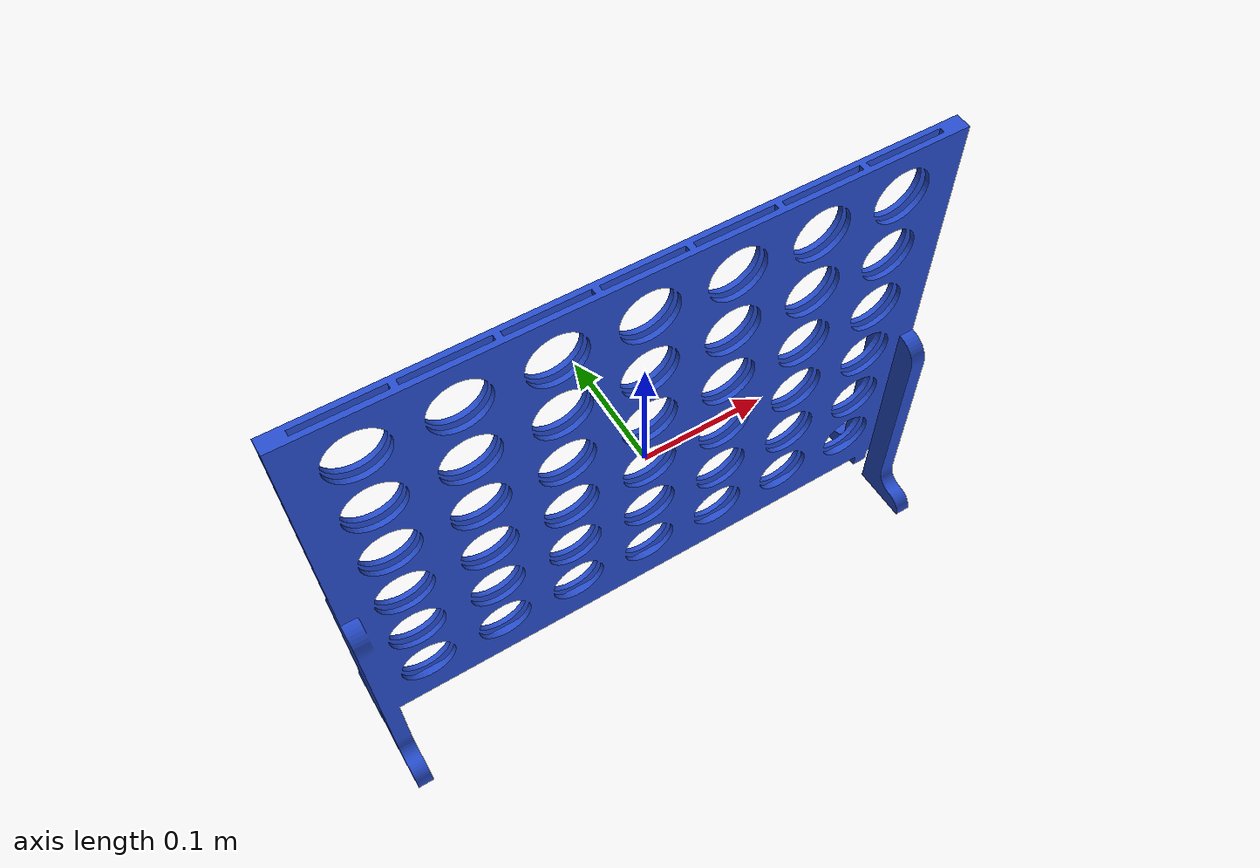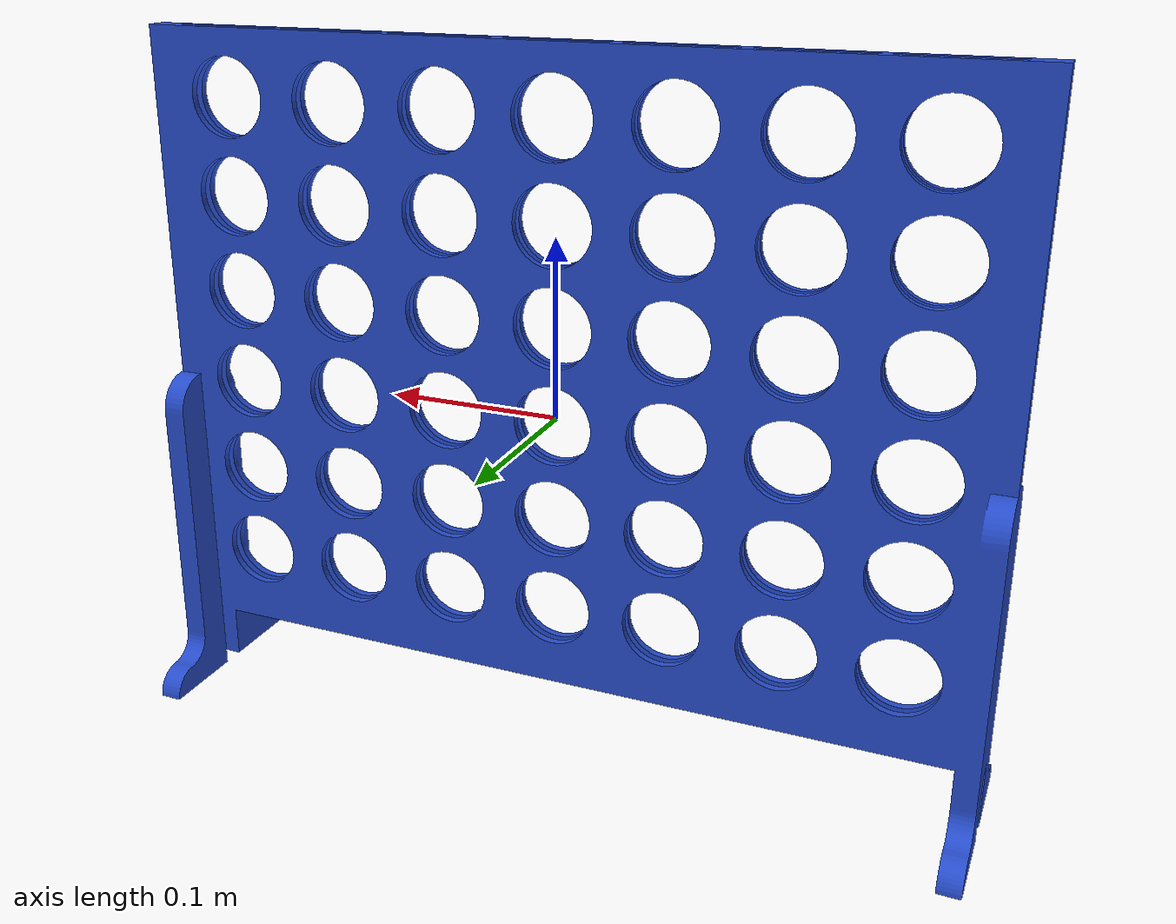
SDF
<?xml version="1.0" ?>
<sdf version="1.5">
  <model name="Grid">
    <static>true</static>
    <link name="link">

      <collision name="Base">
        <pose>0 0 -0.17 0 0 0</pose>
        <geometry>
          <box>
            <size>0.485 0.0129 0.065</size>
          </box>
        </geometry>
      </collision>

      <collision name="Front">
        <pose>0 -0.0043 0.03 0 0 0</pose>
        <geometry>
          <box>
            <size>0.485 0.0043 0.34</size>
          </box>
        </geometry>
      </collision>

      <collision name="Back">
        <pose>0 0.0043 0.03 0 0 0</pose>
        <geometry>
          <box>
            <size>0.485 0.0043 0.34</size>
          </box>
        </geometry>
      </collision>

      <collision name="Left">
        <pose>-0.2375 0 0.03 0 0 0</pose>
        <geometry>
          <box>
            <size>0.0175 0.0043 0.34</size>
          </box>
        </geometry>
      </collision>

      <collision name="Right">
        <pose>0.2375 0 0.03 0 0 0</pose>
        <geometry>
          <box>
            <size>0.0175 0.0043 0.34</size>
          </box>
        </geometry>
      </collision>

      <collision name="InnerCol1">
        <pose>0.1625 0 0.03 0 0 0</pose>
        <geometry>
          <box>
            <size>0.005 0.0043 0.34</size>
          </box>
        </geometry>
      </collision>
      <collision name="InnerCol2">
        <pose>0.0975 0 0.03 0 0 0</pose>
        <geometry>
          <box>
            <size>0.005 0.0043 0.34</size>
          </box>
        </geometry>
      </collision>
      <collision name="InnerCol3">
        <pose>0.0325 0 0.03 0 0 0</pose>
        <geometry>
          <box>
            <size>0.005 0.0043 0.34</size>
          </box>
        </geometry>
      </collision>
     <collision name="InnerCol4">
        <pose>-0.0325 0 0.03 0 0 0</pose>
        <geometry>
          <box>
            <size>0.005 0.0043 0.34</size>
          </box>
        </geometry>
      </collision>
      <collision name="InnerCol5">
        <pose>-0.0975 0 0.03 0 0 0</pose>
        <geometry>
          <box>
            <size>0.005 0.0043 0.34</size>
          </box>
        </geometry>
      </collision>
      <collision name="InnerCol6">
        <pose>-0.1625 0 0.03 0 0 0</pose>
        <geometry>
          <box>
            <size>0.005 0.0043 0.34</size>
          </box>
        </geometry>
      </collision>

      <visual name="visual">
        <geometry>
          <mesh>
            <uri>model://Grid/FinalGrid.dae</uri>
          </mesh>
        </geometry>
        <material>
            <lighting>1</lighting>
            <script>
              <uri>file://media/materials/scripts/gazebo.material</uri>
              <name>Gazebo/Blue</name>
            </script>
            <shader type='vertex'>
              <normal_map>__default__</normal_map>
            </shader>
        </material>
      </visual>
    </link>
  </model>
</sdf>
